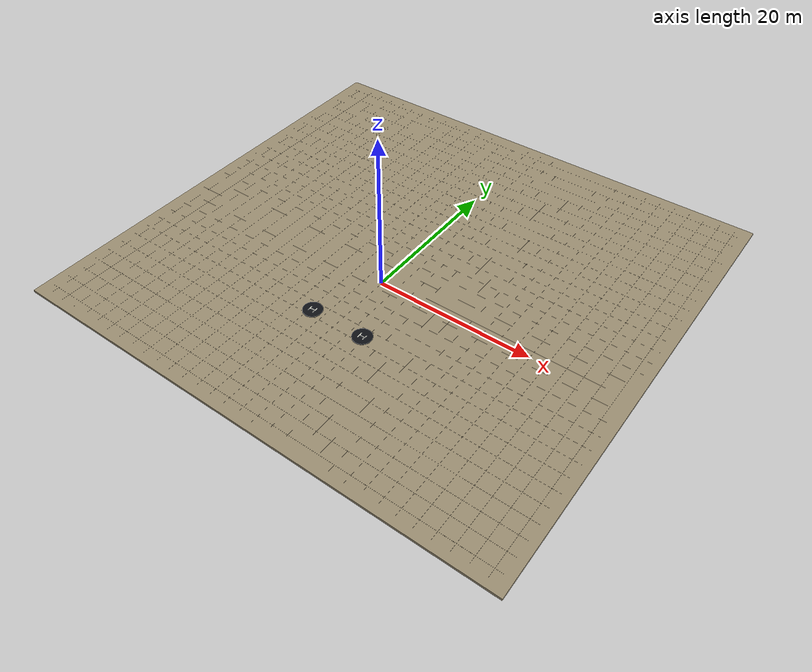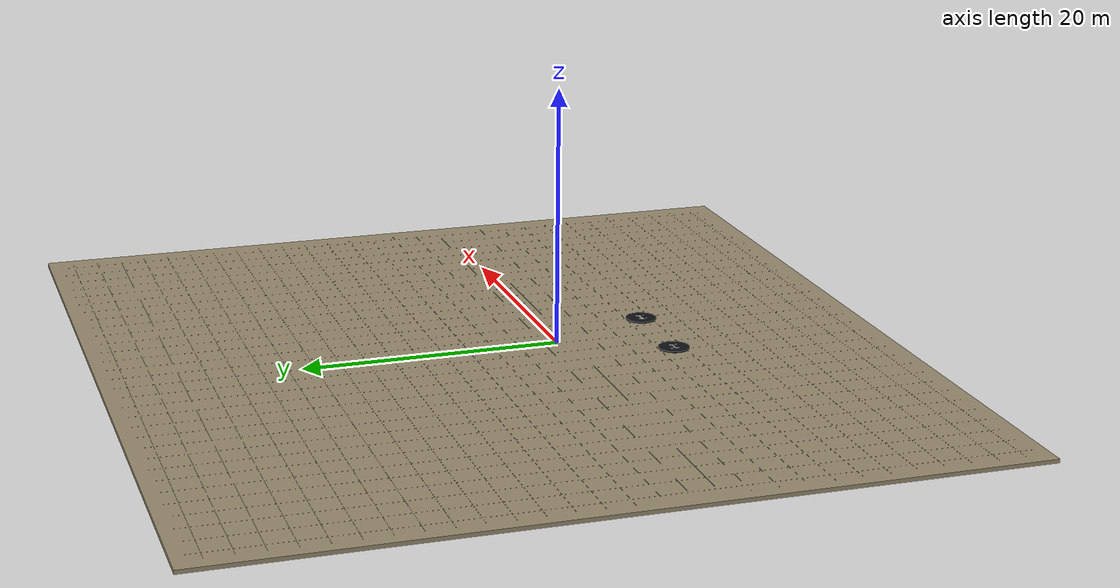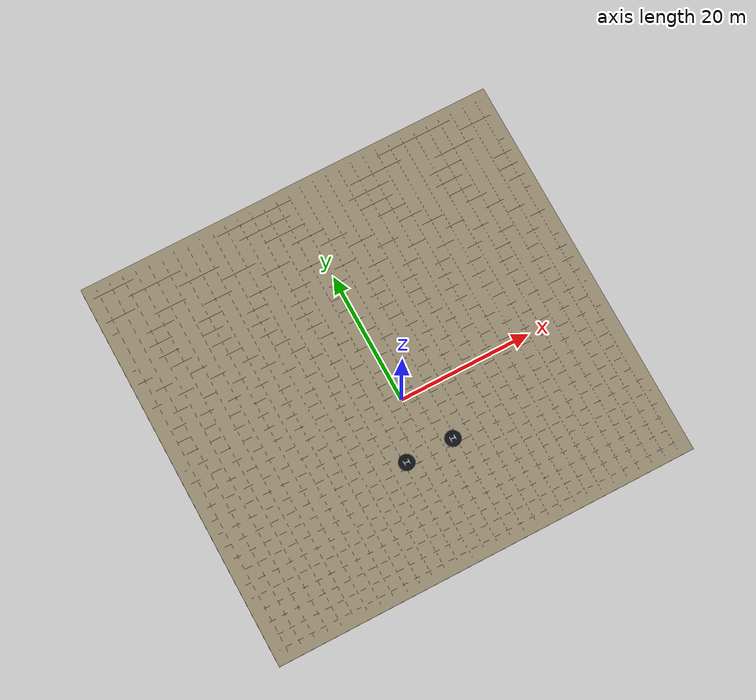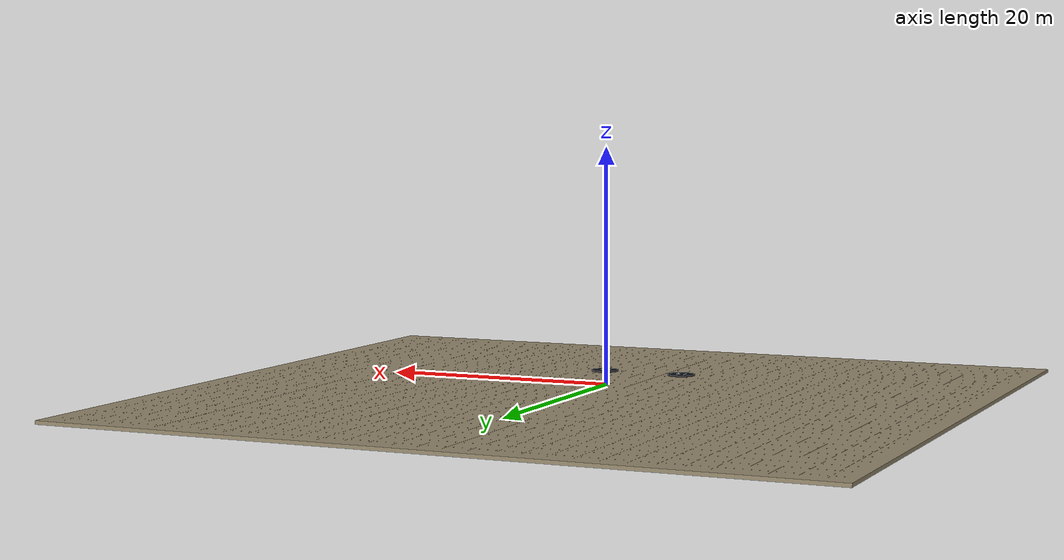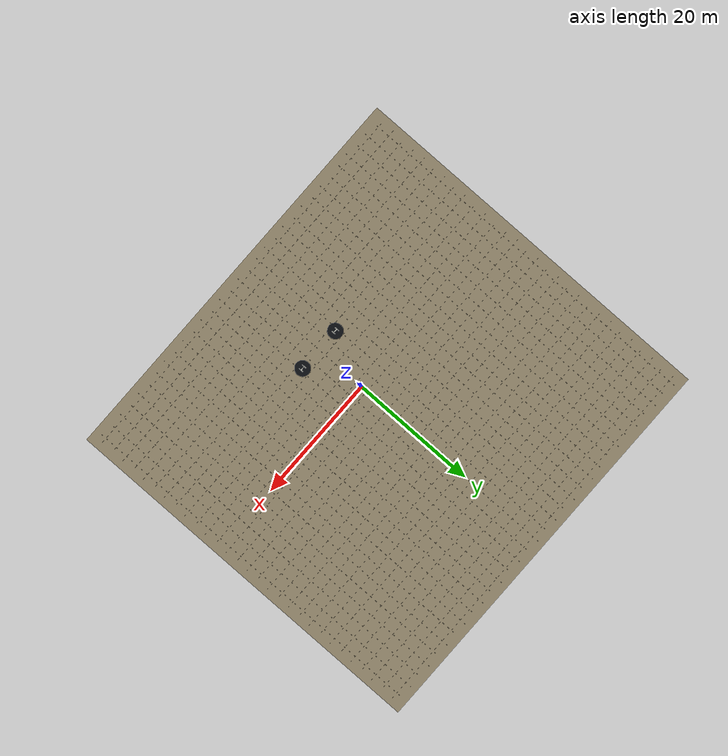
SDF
<?xml version='1.0' encoding='utf-8'?>
<sdf version="1.10">
  <model name="courtyard">
    <static>true</static>
    <link name="body">
      <visual name="dark">
        <geometry>
          <mesh>
            <uri>model://courtyard/meshes/dark.obj</uri>
          </mesh>
        </geometry>
        <material>
          <ambient>0.055 0.065 0.08 1</ambient>
          <diffuse>0.055 0.065 0.08 1</diffuse>
          <specular>.08 .08 .08 1</specular>
        </material>
      </visual>
      <visual name="joint">
        <geometry>
          <mesh>
            <uri>model://courtyard/meshes/joint.obj</uri>
          </mesh>
        </geometry>
        <material>
          <ambient>0.43 0.39 0.31 1</ambient>
          <diffuse>0.43 0.39 0.31 1</diffuse>
          <specular>.08 .08 .08 1</specular>
        </material>
      </visual>
      <visual name="paving">
        <geometry>
          <mesh>
            <uri>model://courtyard/meshes/paving.obj</uri>
          </mesh>
        </geometry>
        <material>
          <ambient>0.6 0.55 0.44 1</ambient>
          <diffuse>0.6 0.55 0.44 1</diffuse>
          <specular>.08 .08 .08 1</specular>
        </material>
      </visual>
      <visual name="white">
        <geometry>
          <mesh>
            <uri>model://courtyard/meshes/white.obj</uri>
          </mesh>
        </geometry>
        <material>
          <ambient>0.94 0.94 0.88 1</ambient>
          <diffuse>0.94 0.94 0.88 1</diffuse>
          <specular>.08 .08 .08 1</specular>
        </material>
      </visual>
    </link>
  </model>
</sdf>
